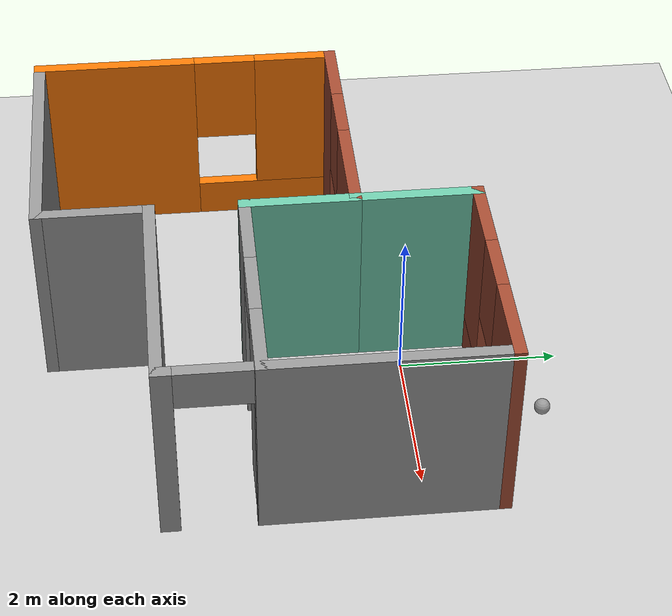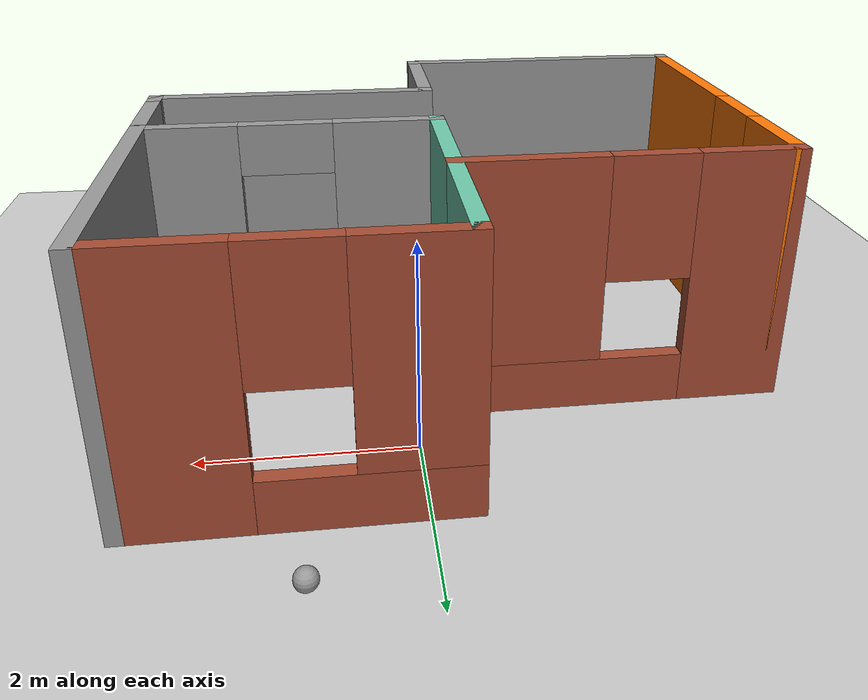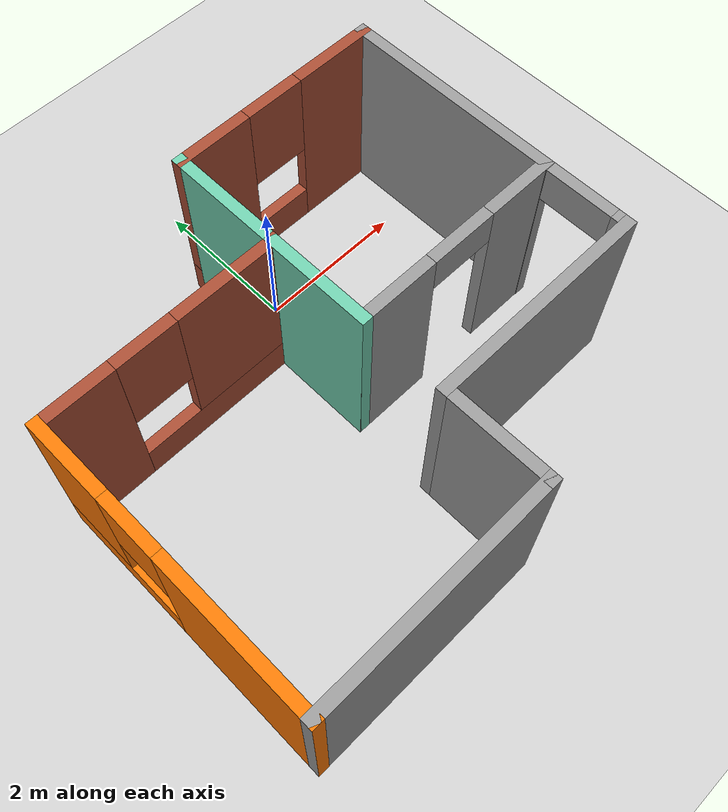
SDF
<sdf version="1.6">
 <world name="default">
  <plugin name="welcome_message" filename="libwelcome_message.so"/>
  <light name="sun" type="directional">
   <pose>0 0 10 0 -0 0</pose>
   <diffuse>0.8 0.8 0.8 1</diffuse>
   <specular>0.2 0.2 0.2 1</specular>
   <attenuation>
    <range>1000</range>
    <constant>0.9</constant>
    <linear>0.01</linear>
    <quadratic>0.001</quadratic>
   </attenuation>
   <direction>-0.5 0.1 -0.9</direction>
  </light>
  <model name="ground_plane">
   <static>1</static>
   <link name="link">
    <collision name="collision">
     <geometry><plane><normal>0 0 1</normal><size>100 100</size></plane></geometry>
     <surface>
      <contact><collide_bitmask>65535</collide_bitmask></contact>
      <friction><ode><mu>100</mu><mu2>50</mu2></ode></friction>
     </surface>
    </collision>
    <visual name="visual">
     <cast_shadows>0</cast_shadows>
     <geometry><plane><normal>0 0 1</normal><size>100 100</size></plane></geometry>
     <material>
      <script><uri>file://media/materials/scripts/gazebo.material</uri><name>Gazebo/Grey</name></script>
     </material>
    </visual>
   </link>
  </model>
  <gravity>0 0 -9.8</gravity>
  <magnetic_field>6e-06 2.3e-05 -4.2e-05</magnetic_field>
  <atmosphere type="adiabatic"/>
  <physics name="default_physics" default="0" type="ode">
   <max_step_size>0.001</max_step_size>
   <real_time_factor>1</real_time_factor>
   <real_time_update_rate>1000</real_time_update_rate>
  </physics>
  <scene><ambient>0.4 0.4 0.4 1</ambient><background>0.7 0.7 0.7 1</background><shadows>1</shadows></scene>
  <spherical_coordinates>
   <surface_model>EARTH_WGS84</surface_model>
   <latitude_deg>0</latitude_deg>
   <longitude_deg>0</longitude_deg>
   <elevation>0</elevation>
   <heading_deg>0</heading_deg>
  </spherical_coordinates>
  <model name="Building">
   <pose>-0.50348 -1.75035 0 0 -0 0</pose>
   <link name="Wall_0">
    <collision name="Wall_0_Collision">
     <geometry><box><size>3 0.15 2.5</size></box></geometry>
     <pose>0 0 1.25 0 -0 0</pose>
    </collision>
    <visual name="Wall_0_Visual">
     <pose>0 0 1.25 0 -0 0</pose>
     <geometry><box><size>3 0.15 2.5</size></box></geometry>
     <material>
      <script><uri>file://media/materials/scripts/gazebo.material</uri><name>Gazebo/Grey</name></script>
      <ambient>1 1 1 1</ambient>
     </material>
     <meta><layer>0</layer></meta>
    </visual>
    <pose>1.55 -1.325 0 0 -0 3.14159</pose>
   </link>
   <link name="Wall_1">
    <collision name="Wall_1_Collision">
     <geometry><box><size>1.5 0.15 2.5</size></box></geometry>
     <pose>0 0 1.25 0 -0 0</pose>
    </collision>
    <visual name="Wall_1_Visual">
     <pose>0 0 1.25 0 -0 0</pose>
     <geometry><box><size>1.5 0.15 2.5</size></box></geometry>
     <material>
      <script><uri>file://media/materials/scripts/gazebo.material</uri><name>Gazebo/Grey</name></script>
      <ambient>1 1 1 1</ambient>
     </material>
     <meta><layer>0</layer></meta>
    </visual>
    <pose>0.125 -2 0 0 0 -1.5708</pose>
   </link>
   <link name="Wall_11">
    <pose>2.975 -0.75 0 0 -0 1.5708</pose>
    <visual name="Wall_11_Visual_0">
     <pose>-0.528615 0 1.25 0 -0 0</pose>
     <geometry><box><size>0.24277 0.15 2.5</size></box></geometry>
     <material>
      <script><uri>file://media/materials/scripts/gazebo.material</uri><name>Gazebo/Grey</name></script>
      <ambient>1 1 1 1</ambient>
     </material>
     <meta><layer>0</layer></meta>
    </visual>
    <collision name="Wall_11_Collision_0">
     <geometry><box><size>0.24277 0.15 2.5</size></box></geometry>
     <pose>-0.528615 0 1.25 0 -0 0</pose>
    </collision>
    <visual name="Wall_11_Visual_1">
     <pose>0.571385 0 1.25 0 -0 0</pose>
     <geometry><box><size>0.15723 0.15 2.5</size></box></geometry>
     <material>
      <script><uri>file://media/materials/scripts/gazebo.material</uri><name>Gazebo/Grey</name></script>
      <ambient>1 1 1 1</ambient>
     </material>
     <meta><layer>0</layer></meta>
    </visual>
    <collision name="Wall_11_Collision_1">
     <geometry><box><size>0.15723 0.15 2.5</size></box></geometry>
     <pose>0.571385 0 1.25 0 -0 0</pose>
    </collision>
    <visual name="Wall_11_Visual_2">
     <pose>0.04277 0 2.25 0 -0 0</pose>
     <geometry><box><size>0.9 0.15 0.5</size></box></geometry>
     <material>
      <script><uri>file://media/materials/scripts/gazebo.material</uri><name>Gazebo/Grey</name></script>
      <ambient>1 1 1 1</ambient>
     </material>
     <meta><layer>0</layer></meta>
    </visual>
    <collision name="Wall_11_Collision_2">
     <geometry><box><size>0.9 0.15 0.5</size></box></geometry>
     <pose>0.04277 0 2.25 0 -0 0</pose>
    </collision>
   </link>
   <link name="Wall_2">
    <collision name="Wall_2_Collision">
     <geometry><box><size>3.25 0.15 2.5</size></box></geometry>
     <pose>0 0 1.25 0 -0 0</pose>
    </collision>
    <visual name="Wall_2_Visual">
     <pose>0 0 1.25 0 -0 0</pose>
     <geometry><box><size>3.25 0.15 2.5</size></box></geometry>
     <material>
      <script><uri>file://media/materials/scripts/gazebo.material</uri><name>Gazebo/Grey</name></script>
      <ambient>1 1 1 1</ambient>
     </material>
     <meta><layer>0</layer></meta>
    </visual>
    <pose>-1.425 -2.675 0 0 -0 3.14159</pose>
   </link>
   <link name="Wall_3">
    <pose>-2.975 -0.75 0 0 -0 1.5708</pose>
    <visual name="Wall_3_Visual_0">
     <pose>-0.942879 0 1.25 0 -0 0</pose>
     <geometry><box><size>2.11424 0.15 2.5</size></box></geometry>
     <material>
      <script><uri>file://media/materials/scripts/gazebo.material</uri><name>Gazebo/Grey</name></script>
      <ambient>0.996078 0.47451 0.0196078 1</ambient>
     </material>
     <meta><layer>0</layer></meta>
    </visual>
    <collision name="Wall_3_Collision_0">
     <geometry><box><size>2.11424 0.15 2.5</size></box></geometry>
     <pose>-0.942879 0 1.25 0 -0 0</pose>
    </collision>
    <visual name="Wall_3_Visual_1">
     <pose>1.05712 0 0.25 0 -0 0</pose>
     <geometry><box><size>1.88576 0.15 0.5</size></box></geometry>
     <material>
      <script><uri>file://media/materials/scripts/gazebo.material</uri><name>Gazebo/Grey</name></script>
      <ambient>0.996078 0.47451 0.0196078 1</ambient>
     </material>
     <meta><layer>0</layer></meta>
    </visual>
    <collision name="Wall_3_Collision_1">
     <geometry><box><size>1.88576 0.15 0.5</size></box></geometry>
     <pose>1.05712 0 0.25 0 -0 0</pose>
    </collision>
    <visual name="Wall_3_Visual_2">
     <pose>1.45712 0 1.5 0 -0 0</pose>
     <geometry><box><size>1.08576 0.15 2</size></box></geometry>
     <material>
      <script><uri>file://media/materials/scripts/gazebo.material</uri><name>Gazebo/Grey</name></script>
      <ambient>0.996078 0.47451 0.0196078 1</ambient>
     </material>
     <meta><layer>0</layer></meta>
    </visual>
    <collision name="Wall_3_Collision_2">
     <geometry><box><size>1.08576 0.15 2</size></box></geometry>
     <pose>1.45712 0 1.5 0 -0 0</pose>
    </collision>
    <visual name="Wall_3_Visual_3">
     <pose>0.514241 0 1.9 0 -0 0</pose>
     <geometry><box><size>0.8 0.15 1.2</size></box></geometry>
     <material>
      <script><uri>file://media/materials/scripts/gazebo.material</uri><name>Gazebo/Grey</name></script>
      <ambient>0.996078 0.47451 0.0196078 1</ambient>
     </material>
     <meta><layer>0</layer></meta>
    </visual>
    <collision name="Wall_3_Collision_3">
     <geometry><box><size>0.8 0.15 1.2</size></box></geometry>
     <pose>0.514241 0 1.9 0 -0 0</pose>
    </collision>
   </link>
   <link name="Wall_4">
    <pose>-1.425 1.175 0 0 -0 0</pose>
    <visual name="Wall_4_Visual_0">
     <pose>-1.12516 0 1.25 0 -0 0</pose>
     <geometry><box><size>0.999671 0.15 2.5</size></box></geometry>
     <material>
      <script><uri>file://media/materials/scripts/gazebo.material</uri><name>Gazebo/Bricks</name></script>
      <ambient>1 1 1 1</ambient>
     </material>
     <meta><layer>0</layer></meta>
    </visual>
    <collision name="Wall_4_Collision_0">
     <geometry><box><size>0.999671 0.15 2.5</size></box></geometry>
     <pose>-1.12516 0 1.25 0 -0 0</pose>
    </collision>
    <visual name="Wall_4_Visual_1">
     <pose>0.499835 0 0.25 0 -0 0</pose>
     <geometry><box><size>2.25033 0.15 0.5</size></box></geometry>
     <material>
      <script><uri>file://media/materials/scripts/gazebo.material</uri><name>Gazebo/Bricks</name></script>
      <ambient>1 1 1 1</ambient>
     </material>
     <meta><layer>0</layer></meta>
    </visual>
    <collision name="Wall_4_Collision_1">
     <geometry><box><size>2.25033 0.15 0.5</size></box></geometry>
     <pose>0.499835 0 0.25 0 -0 0</pose>
    </collision>
    <visual name="Wall_4_Visual_2">
     <pose>0.899835 0 1.5 0 -0 0</pose>
     <geometry><box><size>1.45033 0.15 2</size></box></geometry>
     <material>
      <script><uri>file://media/materials/scripts/gazebo.material</uri><name>Gazebo/Bricks</name></script>
      <ambient>1 1 1 1</ambient>
     </material>
     <meta><layer>0</layer></meta>
    </visual>
    <collision name="Wall_4_Collision_2">
     <geometry><box><size>1.45033 0.15 2</size></box></geometry>
     <pose>0.899835 0 1.5 0 -0 0</pose>
    </collision>
    <visual name="Wall_4_Visual_3">
     <pose>-0.225329 0 1.9 0 -0 0</pose>
     <geometry><box><size>0.8 0.15 1.2</size></box></geometry>
     <material>
      <script><uri>file://media/materials/scripts/gazebo.material</uri><name>Gazebo/Bricks</name></script>
      <ambient>1 1 1 1</ambient>
     </material>
     <meta><layer>0</layer></meta>
    </visual>
    <collision name="Wall_4_Collision_3">
     <geometry><box><size>0.8 0.15 1.2</size></box></geometry>
     <pose>-0.225329 0 1.9 0 -0 0</pose>
    </collision>
   </link>
   <link name="Wall_5">
    <collision name="Wall_5_Collision">
     <geometry><box><size>1.5 0.15 2.5</size></box></geometry>
     <pose>0 0 1.25 0 -0 0</pose>
    </collision>
    <visual name="Wall_5_Visual">
     <pose>0 0 1.25 0 -0 0</pose>
     <geometry><box><size>1.5 0.15 2.5</size></box></geometry>
     <material>
      <script><uri>file://media/materials/scripts/gazebo.material</uri><name>Gazebo/Grey</name></script>
      <ambient>0.435294 0.796078 0.67451 1</ambient>
     </material>
     <meta><layer>0</layer></meta>
    </visual>
    <pose>0.125 0.5 0 0 0 -1.5708</pose>
   </link>
   <link name="Wall_6">
    <pose>1.55 -0.175 0 0 -0 0</pose>
    <visual name="Wall_6_Visual_0">
     <pose>-0.955433 0 1.25 0 -0 0</pose>
     <geometry><box><size>1.08913 0.15 2.5</size></box></geometry>
     <material>
      <script><uri>file://media/materials/scripts/gazebo.material</uri><name>Gazebo/Grey</name></script>
      <ambient>1 1 1 1</ambient>
     </material>
     <meta><layer>0</layer></meta>
    </visual>
    <collision name="Wall_6_Collision_0">
     <geometry><box><size>1.08913 0.15 2.5</size></box></geometry>
     <pose>-0.955433 0 1.25 0 -0 0</pose>
    </collision>
    <visual name="Wall_6_Visual_1">
     <pose>0.994567 0 1.25 0 -0 0</pose>
     <geometry><box><size>1.01087 0.15 2.5</size></box></geometry>
     <material>
      <script><uri>file://media/materials/scripts/gazebo.material</uri><name>Gazebo/Grey</name></script>
      <ambient>1 1 1 1</ambient>
     </material>
     <meta><layer>0</layer></meta>
    </visual>
    <collision name="Wall_6_Collision_1">
     <geometry><box><size>1.01087 0.15 2.5</size></box></geometry>
     <pose>0.994567 0 1.25 0 -0 0</pose>
    </collision>
    <visual name="Wall_6_Visual_2">
     <pose>0.039134 0 2.25 0 -0 0</pose>
     <geometry><box><size>0.9 0.15 0.5</size></box></geometry>
     <material>
      <script><uri>file://media/materials/scripts/gazebo.material</uri><name>Gazebo/Grey</name></script>
      <ambient>1 1 1 1</ambient>
     </material>
     <meta><layer>0</layer></meta>
    </visual>
    <collision name="Wall_6_Collision_2">
     <geometry><box><size>0.9 0.15 0.5</size></box></geometry>
     <pose>0.039134 0 2.25 0 -0 0</pose>
    </collision>
   </link>
   <link name="Wall_7">
    <collision name="Wall_7_Collision">
     <geometry><box><size>3 0.15 2.5</size></box></geometry>
     <pose>0 0 1.25 0 -0 0</pose>
    </collision>
    <visual name="Wall_7_Visual">
     <pose>0 0 1.25 0 -0 0</pose>
     <geometry><box><size>3 0.15 2.5</size></box></geometry>
     <material>
      <script><uri>file://media/materials/scripts/gazebo.material</uri><name>Gazebo/Grey</name></script>
      <ambient>1 1 1 1</ambient>
     </material>
     <meta><layer>0</layer></meta>
    </visual>
    <pose>2.975 1.25 0 0 -0 1.5708</pose>
   </link>
   <link name="Wall_8">
    <pose>1.55 2.675 0 0 -0 3.14159</pose>
    <visual name="Wall_8_Visual_0">
     <pose>-0.916337 0 1.25 0 -0 0</pose>
     <geometry><box><size>1.16733 0.15 2.5</size></box></geometry>
     <material>
      <script><uri>file://media/materials/scripts/gazebo.material</uri><name>Gazebo/Bricks</name></script>
      <ambient>1 1 1 1</ambient>
     </material>
     <meta><layer>0</layer></meta>
    </visual>
    <collision name="Wall_8_Collision_0">
     <geometry><box><size>1.16733 0.15 2.5</size></box></geometry>
     <pose>-0.916337 0 1.25 0 -0 0</pose>
    </collision>
    <visual name="Wall_8_Visual_1">
     <pose>0.583663 0 0.25 0 -0 0</pose>
     <geometry><box><size>1.83267 0.15 0.5</size></box></geometry>
     <material>
      <script><uri>file://media/materials/scripts/gazebo.material</uri><name>Gazebo/Bricks</name></script>
      <ambient>1 1 1 1</ambient>
     </material>
     <meta><layer>0</layer></meta>
    </visual>
    <collision name="Wall_8_Collision_1">
     <geometry><box><size>1.83267 0.15 0.5</size></box></geometry>
     <pose>0.583663 0 0.25 0 -0 0</pose>
    </collision>
    <visual name="Wall_8_Visual_2">
     <pose>0.983663 0 1.5 0 -0 0</pose>
     <geometry><box><size>1.03267 0.15 2</size></box></geometry>
     <material>
      <script><uri>file://media/materials/scripts/gazebo.material</uri><name>Gazebo/Bricks</name></script>
      <ambient>1 1 1 1</ambient>
     </material>
     <meta><layer>0</layer></meta>
    </visual>
    <collision name="Wall_8_Collision_2">
     <geometry><box><size>1.03267 0.15 2</size></box></geometry>
     <pose>0.983663 0 1.5 0 -0 0</pose>
    </collision>
    <visual name="Wall_8_Visual_3">
     <pose>0.067327 0 1.9 0 -0 0</pose>
     <geometry><box><size>0.8 0.15 1.2</size></box></geometry>
     <material>
      <script><uri>file://media/materials/scripts/gazebo.material</uri><name>Gazebo/Bricks</name></script>
      <ambient>1 1 1 1</ambient>
     </material>
     <meta><layer>0</layer></meta>
    </visual>
    <collision name="Wall_8_Collision_3">
     <geometry><box><size>0.8 0.15 1.2</size></box></geometry>
     <pose>0.067327 0 1.9 0 -0 0</pose>
    </collision>
   </link>
   <link name="Wall_9">
    <collision name="Wall_9_Collision">
     <geometry><box><size>1.65 0.15 2.5</size></box></geometry>
     <pose>0 0 1.25 0 -0 0</pose>
    </collision>
    <visual name="Wall_9_Visual">
     <pose>0 0 1.25 0 -0 0</pose>
     <geometry><box><size>1.65 0.15 2.5</size></box></geometry>
     <material>
      <script><uri>file://media/materials/scripts/gazebo.material</uri><name>Gazebo/Grey</name></script>
      <ambient>0.435294 0.796078 0.67451 1</ambient>
     </material>
     <meta><layer>0</layer></meta>
    </visual>
    <pose>0.125 1.925 0 0 0 -1.5708</pose>
   </link>
   <static>1</static>
  </model>
  <model name="my_ball">
   <link name="link_0">
    <inertial>
     <mass>1</mass>
     <inertia><ixx>0.1</ixx><ixy>0</ixy><ixz>0</ixz><iyy>0.1</iyy><iyz>0</iyz><izz>0.1</izz></inertia>
    </inertial>
    <visual name="visual">
     <geometry><sphere><radius>0.1</radius></sphere></geometry>
     <material>
      <lighting>1</lighting>
      <script><uri>file://media/materials/scripts/gazebo.material</uri><name>Gazebo/Grey</name></script>
      <shader type="pixel"><normal_map>__default__</normal_map></shader>
      <ambient>1 1 1 1</ambient>
      <diffuse>1 1 1 1</diffuse>
      <specular>1 1 1 1</specular>
      <emissive>1 1 1 1</emissive>
     </material>
    </visual>
    <collision name="collision">
     <geometry><sphere><radius>0.1</radius></sphere></geometry>
     <surface>
      <friction>
       <ode><mu>1</mu><mu2>1</mu2><fdir1>0 0 0</fdir1><slip1>0</slip1><slip2>0</slip2></ode>
       <torsional>
        <coefficient>1</coefficient>
        <patch_radius>0</patch_radius>
        <surface_radius>0</surface_radius>
        <use_patch_radius>1</use_patch_radius>
        <ode><slip>0</slip></ode>
       </torsional>
      </friction>
      <bounce><restitution_coefficient>0</restitution_coefficient><threshold>1e+06</threshold></bounce>
      <contact>
       <collide_without_contact>0</collide_without_contact>
       <collide_without_contact_bitmask>1</collide_without_contact_bitmask>
       <collide_bitmask>1</collide_bitmask>
       <ode>
        <soft_cfm>0</soft_cfm>
        <soft_erp>0.2</soft_erp>
        <kp>1e+13</kp>
        <kd>1</kd>
        <max_vel>0.01</max_vel>
        <min_depth>0</min_depth>
       </ode>
       <bullet>
        <split_impulse>1</split_impulse>
        <split_impulse_penetration_threshold>-0.01</split_impulse_penetration_threshold>
        <soft_cfm>0</soft_cfm>
        <soft_erp>0.2</soft_erp>
        <kp>1e+13</kp>
        <kd>1</kd>
       </bullet>
      </contact>
     </surface>
    </collision>
   </link>
   <static>0</static>
   <pose>0.99042 1.64845 0.1 0 -0 0</pose>
  </model>
 </world>
</sdf>
